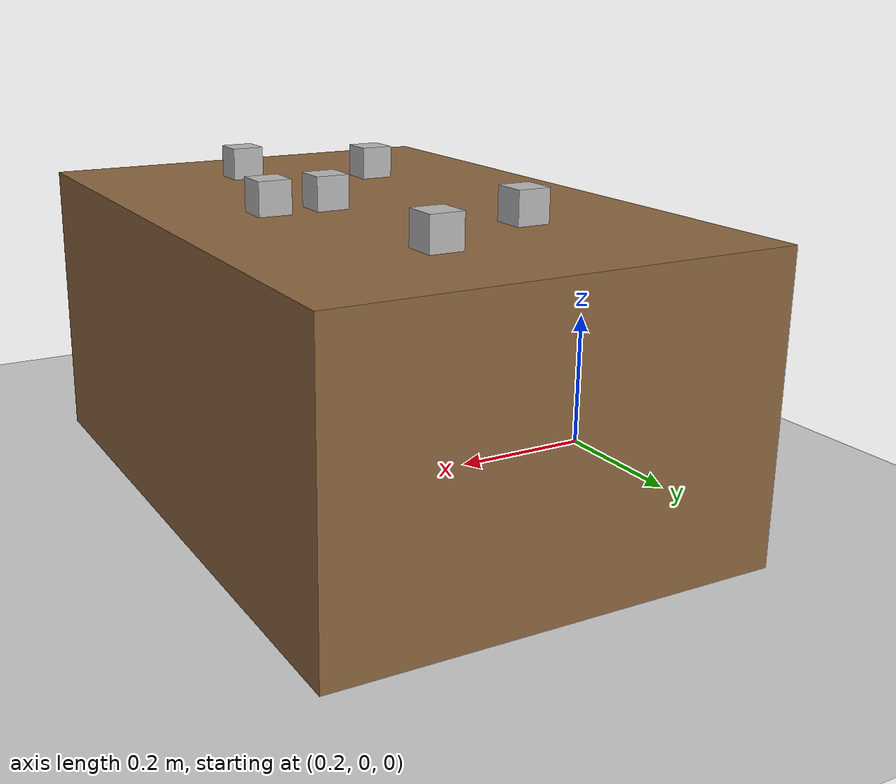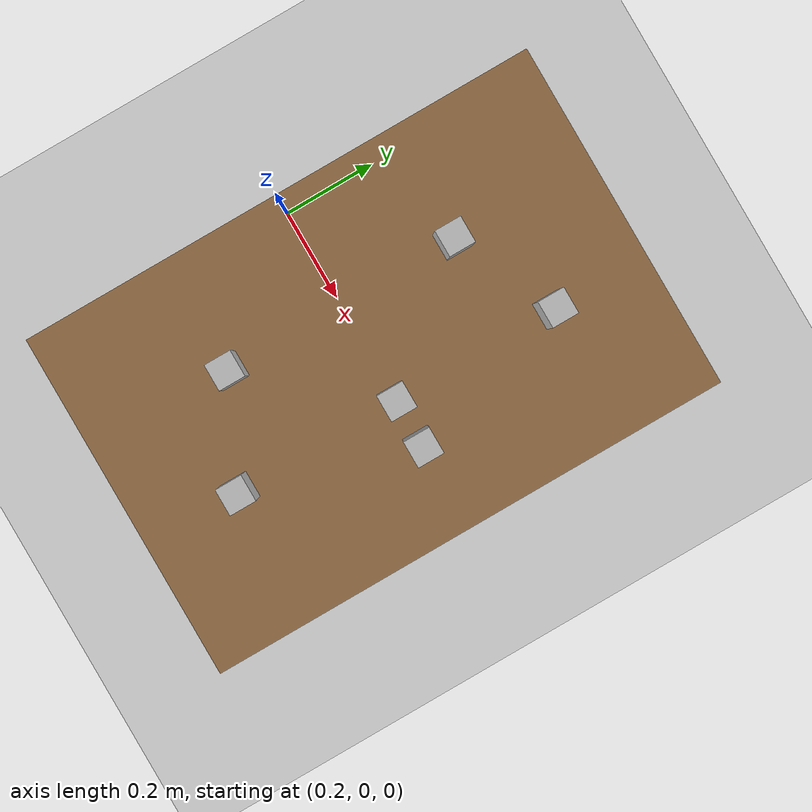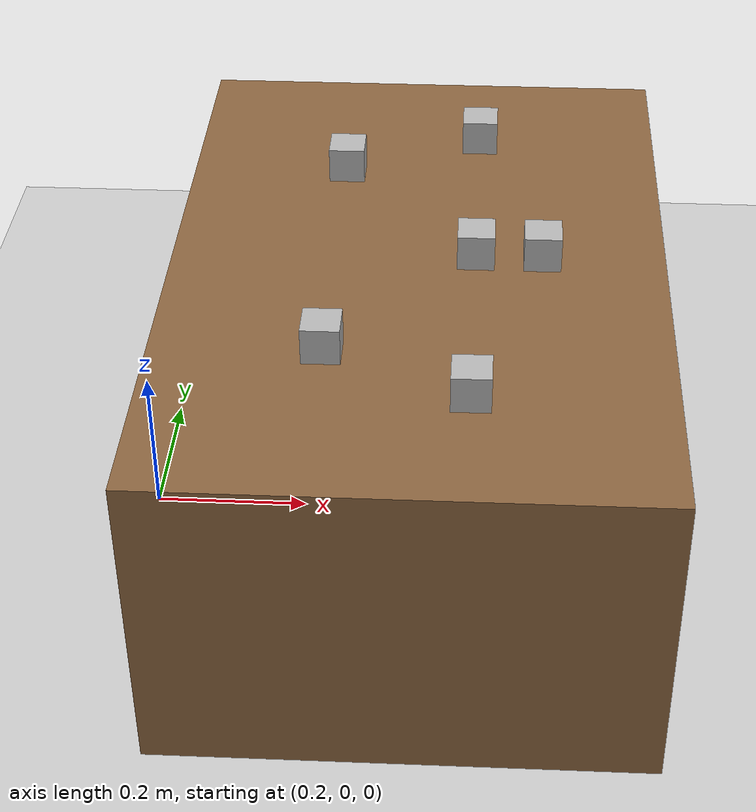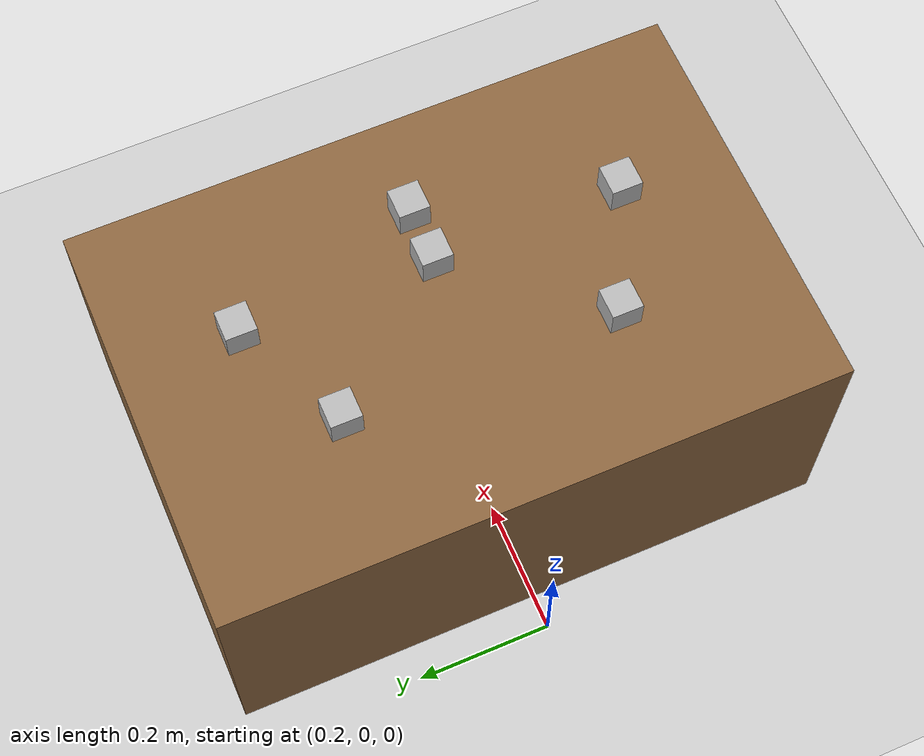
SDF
<?xml version="1.0"?>
<sdf version="1.6">
  <world name="default">

    <include><uri>model://sun</uri></include>
    <include><uri>model://ground_plane</uri></include>

    <light name="fill" type="directional">
      <pose>0.55 0 3 0 0 0</pose>
      <direction>0 0 -1</direction>
      <diffuse>0.5 0.5 0.5 1</diffuse>
      <specular>0 0 0 1</specular>
      <cast_shadows>false</cast_shadows>
    </light>

    <!-- Slower than realtime hurts nothing here and keeps the grasp stable. -->
    <physics type="ode">
      <max_step_size>0.001</max_step_size>
      <real_time_update_rate>1000</real_time_update_rate>
      <ode>
        <solver>
          <type>quick</type>
          <iters>100</iters>
          <sor>1.3</sor>
        </solver>
        <constraints>
          <cfm>0.0</cfm>
          <erp>0.2</erp>
          <contact_max_correcting_vel>100.0</contact_max_correcting_vel>
          <contact_surface_layer>0.001</contact_surface_layer>
        </constraints>
      </ode>
    </physics>

    <model name="table">
      <static>true</static>
      <pose>0.55 0 0.20 0 0 0</pose>
      <link name="link">
        <collision name="collision">
          <geometry><box><size>0.60 0.90 0.40</size></box></geometry>
          <surface>
            <friction>
              <ode><mu>1.0</mu><mu2>1.0</mu2></ode>
            </friction>
          </surface>
        </collision>
        <visual name="visual">
          <geometry><box><size>0.60 0.90 0.40</size></box></geometry>
          <material>
            <ambient>0.35 0.25 0.15 1</ambient>
            <diffuse>0.55 0.40 0.25 1</diffuse>
          </material>
        </visual>
      </link>
    </model>

    <model name="block_A">
      <pose>0.45 -0.20 0.4225 0 0 0</pose>
      <link name="link">
        <inertial>
          <mass>0.05</mass>
          <inertia>
            <ixx>1.6875e-05</ixx><ixy>0</ixy><ixz>0</ixz>
            <iyy>1.6875e-05</iyy><iyz>0</iyz><izz>1.6875e-05</izz>
          </inertia>
        </inertial>
        <collision name="collision">
          <geometry><box><size>0.045 0.045 0.045</size></box></geometry>
          <surface>
            <friction>
              <ode><mu>2.0</mu><mu2>2.0</mu2></ode>
            </friction>
            <contact><ode><kp>1e6</kp><kd>100</kd></ode></contact>
          </surface>
        </collision>
        <visual name="visual">
          <geometry><box><size>0.045 0.045 0.045</size></box></geometry>
          <material>
            <script>
              <uri>file://media/materials/scripts/blocks.material</uri>
              <uri>file://media/materials/textures</uri>
              <name>Blocks/A</name>
            </script>
          </material>
        </visual>
      </link>
    </model>

    <model name="block_B">
      <pose>0.45 0.20 0.4225 0 0 0</pose>
      <link name="link">
        <inertial>
          <mass>0.05</mass>
          <inertia>
            <ixx>1.6875e-05</ixx><ixy>0</ixy><ixz>0</ixz>
            <iyy>1.6875e-05</iyy><iyz>0</iyz><izz>1.6875e-05</izz>
          </inertia>
        </inertial>
        <collision name="collision">
          <geometry><box><size>0.045 0.045 0.045</size></box></geometry>
          <surface>
            <friction>
              <ode><mu>2.0</mu><mu2>2.0</mu2></ode>
            </friction>
            <contact><ode><kp>1e6</kp><kd>100</kd></ode></contact>
          </surface>
        </collision>
        <visual name="visual">
          <geometry><box><size>0.045 0.045 0.045</size></box></geometry>
          <material>
            <script>
              <uri>file://media/materials/scripts/blocks.material</uri>
              <uri>file://media/materials/textures</uri>
              <name>Blocks/B</name>
            </script>
          </material>
        </visual>
      </link>
    </model>

    <model name="block_C">
      <pose>0.62 0.00 0.4225 0 0 0</pose>
      <link name="link">
        <inertial>
          <mass>0.05</mass>
          <inertia>
            <ixx>1.6875e-05</ixx><ixy>0</ixy><ixz>0</ixz>
            <iyy>1.6875e-05</iyy><iyz>0</iyz><izz>1.6875e-05</izz>
          </inertia>
        </inertial>
        <collision name="collision">
          <geometry><box><size>0.045 0.045 0.045</size></box></geometry>
          <surface>
            <friction>
              <ode><mu>2.0</mu><mu2>2.0</mu2></ode>
            </friction>
            <contact><ode><kp>1e6</kp><kd>100</kd></ode></contact>
          </surface>
        </collision>
        <visual name="visual">
          <geometry><box><size>0.045 0.045 0.045</size></box></geometry>
          <material>
            <script>
              <uri>file://media/materials/scripts/blocks.material</uri>
              <uri>file://media/materials/textures</uri>
              <name>Blocks/C</name>
            </script>
          </material>
        </visual>
      </link>
    </model>

    <model name="block_D">
      <pose>0.62 -0.28 0.4225 0 0 0</pose>
      <link name="link">
        <inertial>
          <mass>0.05</mass>
          <inertia>
            <ixx>1.6875e-05</ixx><ixy>0</ixy><ixz>0</ixz>
            <iyy>1.6875e-05</iyy><iyz>0</iyz><izz>1.6875e-05</izz>
          </inertia>
        </inertial>
        <collision name="collision">
          <geometry><box><size>0.045 0.045 0.045</size></box></geometry>
          <surface>
            <friction>
              <ode><mu>2.0</mu><mu2>2.0</mu2></ode>
            </friction>
            <contact><ode><kp>1e6</kp><kd>100</kd></ode></contact>
          </surface>
        </collision>
        <visual name="visual">
          <geometry><box><size>0.045 0.045 0.045</size></box></geometry>
          <material>
            <script>
              <uri>file://media/materials/scripts/blocks.material</uri>
              <uri>file://media/materials/textures</uri>
              <name>Blocks/D</name>
            </script>
          </material>
        </visual>
      </link>
    </model>

    <model name="block_E">
      <pose>0.62 0.28 0.4225 0 0 0</pose>
      <link name="link">
        <inertial>
          <mass>0.05</mass>
          <inertia>
            <ixx>1.6875e-05</ixx><ixy>0</ixy><ixz>0</ixz>
            <iyy>1.6875e-05</iyy><iyz>0</iyz><izz>1.6875e-05</izz>
          </inertia>
        </inertial>
        <collision name="collision">
          <geometry><box><size>0.045 0.045 0.045</size></box></geometry>
          <surface>
            <friction>
              <ode><mu>2.0</mu><mu2>2.0</mu2></ode>
            </friction>
            <contact><ode><kp>1e6</kp><kd>100</kd></ode></contact>
          </surface>
        </collision>
        <visual name="visual">
          <geometry><box><size>0.045 0.045 0.045</size></box></geometry>
          <material>
            <script>
              <uri>file://media/materials/scripts/blocks.material</uri>
              <uri>file://media/materials/textures</uri>
              <name>Blocks/E</name>
            </script>
          </material>
        </visual>
      </link>
    </model>

    <model name="block_F">
      <pose>0.70 0.00 0.4225 0 0 0</pose>
      <link name="link">
        <inertial>
          <mass>0.05</mass>
          <inertia>
            <ixx>1.6875e-05</ixx><ixy>0</ixy><ixz>0</ixz>
            <iyy>1.6875e-05</iyy><iyz>0</iyz><izz>1.6875e-05</izz>
          </inertia>
        </inertial>
        <collision name="collision">
          <geometry><box><size>0.045 0.045 0.045</size></box></geometry>
          <surface>
            <friction>
              <ode><mu>2.0</mu><mu2>2.0</mu2></ode>
            </friction>
            <contact><ode><kp>1e6</kp><kd>100</kd></ode></contact>
          </surface>
        </collision>
        <visual name="visual">
          <geometry><box><size>0.045 0.045 0.045</size></box></geometry>
          <material>
            <script>
              <uri>file://media/materials/scripts/blocks.material</uri>
              <uri>file://media/materials/textures</uri>
              <name>Blocks/F</name>
            </script>
          </material>
        </visual>
      </link>
    </model>

  </world>
</sdf>
